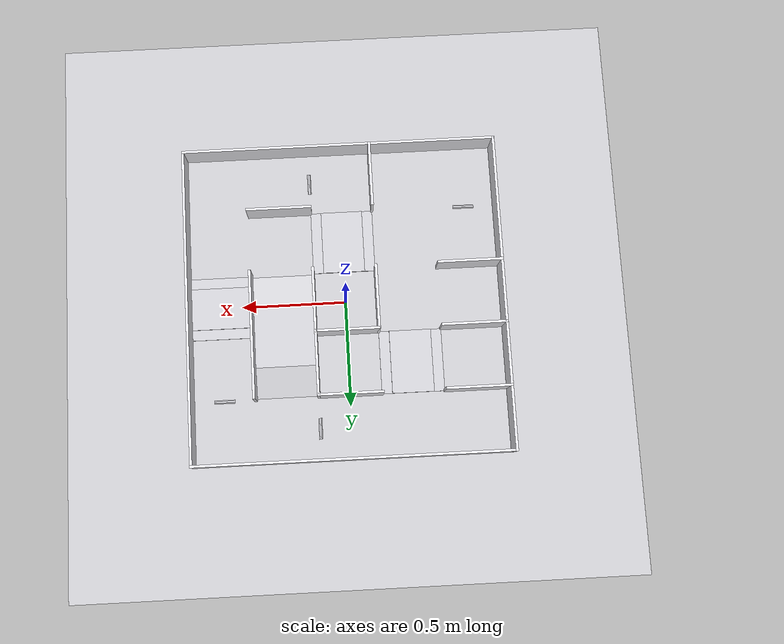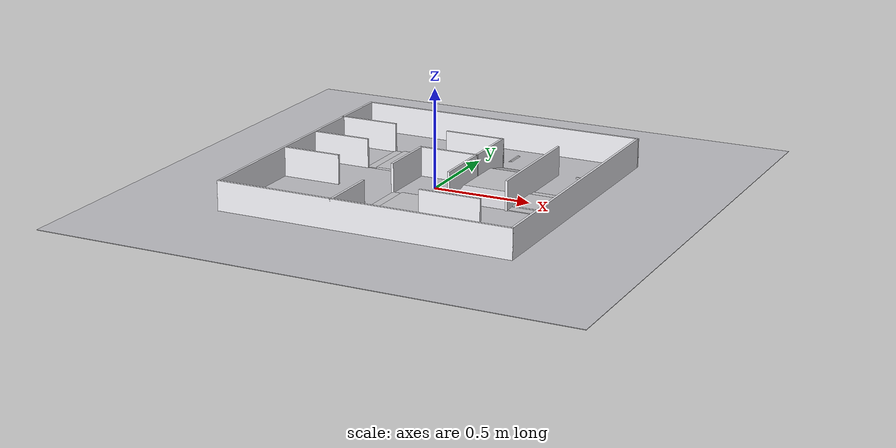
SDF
<sdf version="1.10">
 <world name="pista_a">
  <model name="floor">
   <static>true</static>
   <link name="link">
    <collision name="collision">
     <geometry><plane><normal>0 0 1</normal><size>2.700 2.700</size></plane></geometry>
     <surface><friction><ode><mu>1.0</mu><mu2>1.0</mu2></ode></friction></surface>
    </collision>
    <visual name="visual">
     <geometry><plane><normal>0 0 1</normal><size>2.700 2.700</size></plane></geometry>
     <material><ambient>0.55 0.55 0.57 1</ambient><diffuse>0.80 0.80 0.82 1</diffuse></material>
    </visual>
   </link>
  </model>
  <model name="pista_tiles">
   <static>true</static>
   <link name="tiles">
    <visual name="v_t00_magenta">
     <pose>-0.60000 0.60000 0.00060 0.00000 0 0</pose>
     <geometry><box><size>0.29600 0.29600 0.00100</size></box></geometry>
     <material><ambient>0.700 0.280 0.538 1</ambient><diffuse>1.000 0.400 0.769 1</diffuse></material>
    </visual>
    <visual name="v_t10_yellow">
     <pose>-0.60000 0.30000 0.00060 0.00000 0 0</pose>
     <geometry><box><size>0.29600 0.29600 0.00100</size></box></geometry>
     <material><ambient>0.700 0.609 0.244 1</ambient><diffuse>1.000 0.871 0.349 1</diffuse></material>
    </visual>
    <visual name="v_t40_orange">
     <pose>-0.60000 -0.60000 0.00060 0.00000 0 0</pose>
     <geometry><box><size>0.29600 0.29600 0.00100</size></box></geometry>
     <material><ambient>0.700 0.398 0.211 1</ambient><diffuse>1.000 0.569 0.302 1</diffuse></material>
    </visual>
    <visual name="v_t01_cyan">
     <pose>-0.30000 0.60000 0.00060 0.00000 0 0</pose>
     <geometry><box><size>0.29600 0.29600 0.00100</size></box></geometry>
     <material><ambient>0.253 0.618 0.631 1</ambient><diffuse>0.361 0.882 0.902 1</diffuse></material>
    </visual>
    <visual name="v_t02_inicial">
     <pose>0.00000 0.60000 0.00060 0.00000 0 0</pose>
     <geometry><box><size>0.29600 0.29600 0.00100</size></box></geometry>
     <material><ambient>0.346 0.596 0.239 1</ambient><diffuse>0.494 0.851 0.341 1</diffuse></material>
    </visual>
    <visual name="v_t22_final">
     <pose>0.00000 0.00000 0.00060 0.00000 0 0</pose>
     <geometry><box><size>0.29600 0.29600 0.00100</size></box></geometry>
     <material><ambient>0.700 0.239 0.239 1</ambient><diffuse>1.000 0.341 0.341 1</diffuse></material>
    </visual>
   </link>
  </model>
  <model name="pista_a">
   <static>true</static>
   <link name="structure">
    <collision name="c_w0">
     <pose>-0.75000 0.00000 0.07500 0.00000 0 0</pose>
     <geometry><box><size>0.01200 1.51200 0.15000</size></box></geometry>
    </collision>
    <visual name="v_w0">
     <pose>-0.75000 0.00000 0.07500 0.00000 0 0</pose>
     <geometry><box><size>0.01200 1.51200 0.15000</size></box></geometry>
     <material><ambient>0.651 0.651 0.665 1</ambient><diffuse>0.930 0.930 0.950 1</diffuse></material>
    </visual>
    <collision name="c_w1">
     <pose>-0.15000 0.00000 0.07500 0.00000 0 0</pose>
     <geometry><box><size>0.01200 0.31200 0.15000</size></box></geometry>
    </collision>
    <visual name="v_w1">
     <pose>-0.15000 0.00000 0.07500 0.00000 0 0</pose>
     <geometry><box><size>0.01200 0.31200 0.15000</size></box></geometry>
     <material><ambient>0.651 0.651 0.665 1</ambient><diffuse>0.930 0.930 0.950 1</diffuse></material>
    </visual>
    <collision name="c_w2">
     <pose>-0.15000 -0.60000 0.07500 0.00000 0 0</pose>
     <geometry><box><size>0.01200 0.31200 0.15000</size></box></geometry>
    </collision>
    <visual name="v_w2">
     <pose>-0.15000 -0.60000 0.07500 0.00000 0 0</pose>
     <geometry><box><size>0.01200 0.31200 0.15000</size></box></geometry>
     <material><ambient>0.651 0.651 0.665 1</ambient><diffuse>0.930 0.930 0.950 1</diffuse></material>
    </visual>
    <collision name="c_w3">
     <pose>0.15000 0.15000 0.07500 0.00000 0 0</pose>
     <geometry><box><size>0.01200 0.61200 0.15000</size></box></geometry>
    </collision>
    <visual name="v_w3">
     <pose>0.15000 0.15000 0.07500 0.00000 0 0</pose>
     <geometry><box><size>0.01200 0.61200 0.15000</size></box></geometry>
     <material><ambient>0.651 0.651 0.665 1</ambient><diffuse>0.930 0.930 0.950 1</diffuse></material>
    </visual>
    <collision name="c_w4">
     <pose>0.45000 0.15000 0.07500 0.00000 0 0</pose>
     <geometry><box><size>0.01200 0.61200 0.15000</size></box></geometry>
    </collision>
    <visual name="v_w4">
     <pose>0.45000 0.15000 0.07500 0.00000 0 0</pose>
     <geometry><box><size>0.01200 0.61200 0.15000</size></box></geometry>
     <material><ambient>0.651 0.651 0.665 1</ambient><diffuse>0.930 0.930 0.950 1</diffuse></material>
    </visual>
    <collision name="c_w5">
     <pose>0.75000 0.00000 0.07500 0.00000 0 0</pose>
     <geometry><box><size>0.01200 1.51200 0.15000</size></box></geometry>
    </collision>
    <visual name="v_w5">
     <pose>0.75000 0.00000 0.07500 0.00000 0 0</pose>
     <geometry><box><size>0.01200 1.51200 0.15000</size></box></geometry>
     <material><ambient>0.651 0.651 0.665 1</ambient><diffuse>0.930 0.930 0.950 1</diffuse></material>
    </visual>
    <collision name="c_w6">
     <pose>0.00000 0.75000 0.07500 0.00000 0 0</pose>
     <geometry><box><size>1.51200 0.01200 0.15000</size></box></geometry>
    </collision>
    <visual name="v_w6">
     <pose>0.00000 0.75000 0.07500 0.00000 0 0</pose>
     <geometry><box><size>1.51200 0.01200 0.15000</size></box></geometry>
     <material><ambient>0.651 0.651 0.665 1</ambient><diffuse>0.930 0.930 0.950 1</diffuse></material>
    </visual>
    <collision name="c_w7">
     <pose>-0.60000 0.45000 0.07500 0.00000 0 0</pose>
     <geometry><box><size>0.31200 0.01200 0.15000</size></box></geometry>
    </collision>
    <visual name="v_w7">
     <pose>-0.60000 0.45000 0.07500 0.00000 0 0</pose>
     <geometry><box><size>0.31200 0.01200 0.15000</size></box></geometry>
     <material><ambient>0.651 0.651 0.665 1</ambient><diffuse>0.930 0.930 0.950 1</diffuse></material>
    </visual>
    <collision name="c_w8">
     <pose>0.00000 0.45000 0.07500 0.00000 0 0</pose>
     <geometry><box><size>0.31200 0.01200 0.15000</size></box></geometry>
    </collision>
    <visual name="v_w8">
     <pose>0.00000 0.45000 0.07500 0.00000 0 0</pose>
     <geometry><box><size>0.31200 0.01200 0.15000</size></box></geometry>
     <material><ambient>0.651 0.651 0.665 1</ambient><diffuse>0.930 0.930 0.950 1</diffuse></material>
    </visual>
    <collision name="c_w9">
     <pose>-0.60000 0.15000 0.07500 0.00000 0 0</pose>
     <geometry><box><size>0.31200 0.01200 0.15000</size></box></geometry>
    </collision>
    <visual name="v_w9">
     <pose>-0.60000 0.15000 0.07500 0.00000 0 0</pose>
     <geometry><box><size>0.31200 0.01200 0.15000</size></box></geometry>
     <material><ambient>0.651 0.651 0.665 1</ambient><diffuse>0.930 0.930 0.950 1</diffuse></material>
    </visual>
    <collision name="c_w10">
     <pose>0.00000 0.15000 0.07500 0.00000 0 0</pose>
     <geometry><box><size>0.31200 0.01200 0.15000</size></box></geometry>
    </collision>
    <visual name="v_w10">
     <pose>0.00000 0.15000 0.07500 0.00000 0 0</pose>
     <geometry><box><size>0.31200 0.01200 0.15000</size></box></geometry>
     <material><ambient>0.651 0.651 0.665 1</ambient><diffuse>0.930 0.930 0.950 1</diffuse></material>
    </visual>
    <collision name="c_w11">
     <pose>-0.60000 -0.15000 0.07500 0.00000 0 0</pose>
     <geometry><box><size>0.31200 0.01200 0.15000</size></box></geometry>
    </collision>
    <visual name="v_w11">
     <pose>-0.60000 -0.15000 0.07500 0.00000 0 0</pose>
     <geometry><box><size>0.31200 0.01200 0.15000</size></box></geometry>
     <material><ambient>0.651 0.651 0.665 1</ambient><diffuse>0.930 0.930 0.950 1</diffuse></material>
    </visual>
    <collision name="c_w12">
     <pose>0.30000 -0.45000 0.07500 0.00000 0 0</pose>
     <geometry><box><size>0.31200 0.01200 0.15000</size></box></geometry>
    </collision>
    <visual name="v_w12">
     <pose>0.30000 -0.45000 0.07500 0.00000 0 0</pose>
     <geometry><box><size>0.31200 0.01200 0.15000</size></box></geometry>
     <material><ambient>0.651 0.651 0.665 1</ambient><diffuse>0.930 0.930 0.950 1</diffuse></material>
    </visual>
    <collision name="c_w13">
     <pose>0.00000 -0.75000 0.07500 0.00000 0 0</pose>
     <geometry><box><size>1.51200 0.01200 0.15000</size></box></geometry>
    </collision>
    <visual name="v_w13">
     <pose>0.00000 -0.75000 0.07500 0.00000 0 0</pose>
     <geometry><box><size>1.51200 0.01200 0.15000</size></box></geometry>
     <material><ambient>0.651 0.651 0.665 1</ambient><diffuse>0.930 0.930 0.950 1</diffuse></material>
    </visual>
    <collision name="c_stair0_0">
     <pose>-0.42500 0.30000 0.00250 0.00000 0 0</pose>
     <geometry><box><size>0.05000 0.30000 0.00500</size></box></geometry>
    </collision>
    <visual name="v_stair0_0">
     <pose>-0.42500 0.30000 0.00250 0.00000 0 0</pose>
     <geometry><box><size>0.05000 0.30000 0.00500</size></box></geometry>
     <material><ambient>0.574 0.574 0.588 1</ambient><diffuse>0.820 0.820 0.840 1</diffuse></material>
    </visual>
    <collision name="c_stair0_1">
     <pose>-0.30000 0.30000 0.00500 0.00000 0 0</pose>
     <geometry><box><size>0.20000 0.30000 0.01000</size></box></geometry>
    </collision>
    <visual name="v_stair0_1">
     <pose>-0.30000 0.30000 0.00500 0.00000 0 0</pose>
     <geometry><box><size>0.20000 0.30000 0.01000</size></box></geometry>
     <material><ambient>0.574 0.574 0.588 1</ambient><diffuse>0.820 0.820 0.840 1</diffuse></material>
    </visual>
    <collision name="c_stair0_2">
     <pose>-0.17500 0.30000 0.00250 0.00000 0 0</pose>
     <geometry><box><size>0.05000 0.30000 0.00500</size></box></geometry>
    </collision>
    <visual name="v_stair0_2">
     <pose>-0.17500 0.30000 0.00250 0.00000 0 0</pose>
     <geometry><box><size>0.05000 0.30000 0.00500</size></box></geometry>
     <material><ambient>0.574 0.574 0.588 1</ambient><diffuse>0.820 0.820 0.840 1</diffuse></material>
    </visual>
    <collision name="c_stair1_0">
     <pose>-0.12500 -0.30000 0.00250 0.00000 0 0</pose>
     <geometry><box><size>0.05000 0.30000 0.00500</size></box></geometry>
    </collision>
    <visual name="v_stair1_0">
     <pose>-0.12500 -0.30000 0.00250 0.00000 0 0</pose>
     <geometry><box><size>0.05000 0.30000 0.00500</size></box></geometry>
     <material><ambient>0.574 0.574 0.588 1</ambient><diffuse>0.820 0.820 0.840 1</diffuse></material>
    </visual>
    <collision name="c_stair1_1">
     <pose>0.00000 -0.30000 0.00500 0.00000 0 0</pose>
     <geometry><box><size>0.20000 0.30000 0.01000</size></box></geometry>
    </collision>
    <visual name="v_stair1_1">
     <pose>0.00000 -0.30000 0.00500 0.00000 0 0</pose>
     <geometry><box><size>0.20000 0.30000 0.01000</size></box></geometry>
     <material><ambient>0.574 0.574 0.588 1</ambient><diffuse>0.820 0.820 0.840 1</diffuse></material>
    </visual>
    <collision name="c_stair1_2">
     <pose>0.12500 -0.30000 0.00250 0.00000 0 0</pose>
     <geometry><box><size>0.05000 0.30000 0.00500</size></box></geometry>
    </collision>
    <visual name="v_stair1_2">
     <pose>0.12500 -0.30000 0.00250 0.00000 0 0</pose>
     <geometry><box><size>0.05000 0.30000 0.00500</size></box></geometry>
     <material><ambient>0.574 0.574 0.588 1</ambient><diffuse>0.820 0.820 0.840 1</diffuse></material>
    </visual>
    <collision name="c_stair2_0">
     <pose>0.60000 -0.12500 0.00250 0.00000 0 0</pose>
     <geometry><box><size>0.30000 0.05000 0.00500</size></box></geometry>
    </collision>
    <visual name="v_stair2_0">
     <pose>0.60000 -0.12500 0.00250 0.00000 0 0</pose>
     <geometry><box><size>0.30000 0.05000 0.00500</size></box></geometry>
     <material><ambient>0.574 0.574 0.588 1</ambient><diffuse>0.820 0.820 0.840 1</diffuse></material>
    </visual>
    <collision name="c_stair2_1">
     <pose>0.60000 0.00000 0.00500 0.00000 0 0</pose>
     <geometry><box><size>0.30000 0.20000 0.01000</size></box></geometry>
    </collision>
    <visual name="v_stair2_1">
     <pose>0.60000 0.00000 0.00500 0.00000 0 0</pose>
     <geometry><box><size>0.30000 0.20000 0.01000</size></box></geometry>
     <material><ambient>0.574 0.574 0.588 1</ambient><diffuse>0.820 0.820 0.840 1</diffuse></material>
    </visual>
    <collision name="c_stair2_2">
     <pose>0.60000 0.12500 0.00250 0.00000 0 0</pose>
     <geometry><box><size>0.30000 0.05000 0.00500</size></box></geometry>
    </collision>
    <visual name="v_stair2_2">
     <pose>0.60000 0.12500 0.00250 0.00000 0 0</pose>
     <geometry><box><size>0.30000 0.05000 0.00500</size></box></geometry>
     <material><ambient>0.574 0.574 0.588 1</ambient><diffuse>0.820 0.820 0.840 1</diffuse></material>
    </visual>
    <collision name="c_ramp0_flat">
     <pose>0.30000 0.15000 0.02010 0.00000 0 0</pose>
     <geometry><box><size>0.30000 0.30000 0.04019</size></box></geometry>
    </collision>
    <visual name="v_ramp0_flat">
     <pose>0.30000 0.15000 0.02010 0.00000 0 0</pose>
     <geometry><box><size>0.30000 0.30000 0.04019</size></box></geometry>
     <material><ambient>0.574 0.574 0.588 1</ambient><diffuse>0.820 0.820 0.840 1</diffuse></material>
    </visual>
    <collision name="c_ramp0_s0">
     <pose>0.30000 0.37241 0.01044 -0.26180 0 0</pose>
     <geometry><box><size>0.30000 0.15529 0.02000</size></box></geometry>
    </collision>
    <visual name="v_ramp0_s0">
     <pose>0.30000 0.37241 0.01044 -0.26180 0 0</pose>
     <geometry><box><size>0.30000 0.15529 0.02000</size></box></geometry>
     <material><ambient>0.574 0.574 0.588 1</ambient><diffuse>0.820 0.820 0.840 1</diffuse></material>
    </visual>
    <collision name="c_ramp0_s1">
     <pose>0.30000 -0.07241 0.01044 0.26180 0 0</pose>
     <geometry><box><size>0.30000 0.15529 0.02000</size></box></geometry>
    </collision>
    <visual name="v_ramp0_s1">
     <pose>0.30000 -0.07241 0.01044 0.26180 0 0</pose>
     <geometry><box><size>0.30000 0.15529 0.02000</size></box></geometry>
     <material><ambient>0.574 0.574 0.588 1</ambient><diffuse>0.820 0.820 0.840 1</diffuse></material>
    </visual>
    <collision name="c_bump0_top">
     <pose>0.60000 0.45000 0.00300 0.00000 0 0</pose>
     <geometry><box><size>0.10000 0.00800 0.00600</size></box></geometry>
    </collision>
    <visual name="v_bump0_top">
     <pose>0.60000 0.45000 0.00300 0.00000 0 0</pose>
     <geometry><box><size>0.10000 0.00800 0.00600</size></box></geometry>
     <material><ambient>0.574 0.574 0.588 1</ambient><diffuse>0.820 0.820 0.840 1</diffuse></material>
    </visual>
    <collision name="c_bump0_c0">
     <pose>0.60000 0.45488 0.00088 -0.78540 0 0</pose>
     <geometry><box><size>0.10000 0.00849 0.00600</size></box></geometry>
    </collision>
    <visual name="v_bump0_c0">
     <pose>0.60000 0.45488 0.00088 -0.78540 0 0</pose>
     <geometry><box><size>0.10000 0.00849 0.00600</size></box></geometry>
     <material><ambient>0.574 0.574 0.588 1</ambient><diffuse>0.820 0.820 0.840 1</diffuse></material>
    </visual>
    <collision name="c_bump0_c1">
     <pose>0.60000 0.44512 0.00088 0.78540 0 0</pose>
     <geometry><box><size>0.10000 0.00849 0.00600</size></box></geometry>
    </collision>
    <visual name="v_bump0_c1">
     <pose>0.60000 0.44512 0.00088 0.78540 0 0</pose>
     <geometry><box><size>0.10000 0.00849 0.00600</size></box></geometry>
     <material><ambient>0.574 0.574 0.588 1</ambient><diffuse>0.820 0.820 0.840 1</diffuse></material>
    </visual>
    <collision name="c_bump1_top">
     <pose>-0.60000 -0.45000 0.00300 0.00000 0 0</pose>
     <geometry><box><size>0.10000 0.00800 0.00600</size></box></geometry>
    </collision>
    <visual name="v_bump1_top">
     <pose>-0.60000 -0.45000 0.00300 0.00000 0 0</pose>
     <geometry><box><size>0.10000 0.00800 0.00600</size></box></geometry>
     <material><ambient>0.574 0.574 0.588 1</ambient><diffuse>0.820 0.820 0.840 1</diffuse></material>
    </visual>
    <collision name="c_bump1_c0">
     <pose>-0.60000 -0.44512 0.00088 -0.78540 0 0</pose>
     <geometry><box><size>0.10000 0.00849 0.00600</size></box></geometry>
    </collision>
    <visual name="v_bump1_c0">
     <pose>-0.60000 -0.44512 0.00088 -0.78540 0 0</pose>
     <geometry><box><size>0.10000 0.00849 0.00600</size></box></geometry>
     <material><ambient>0.574 0.574 0.588 1</ambient><diffuse>0.820 0.820 0.840 1</diffuse></material>
    </visual>
    <collision name="c_bump1_c1">
     <pose>-0.60000 -0.45488 0.00088 0.78540 0 0</pose>
     <geometry><box><size>0.10000 0.00849 0.00600</size></box></geometry>
    </collision>
    <visual name="v_bump1_c1">
     <pose>-0.60000 -0.45488 0.00088 0.78540 0 0</pose>
     <geometry><box><size>0.10000 0.00849 0.00600</size></box></geometry>
     <material><ambient>0.574 0.574 0.588 1</ambient><diffuse>0.820 0.820 0.840 1</diffuse></material>
    </visual>
    <collision name="c_bump2_top">
     <pose>0.15000 0.60000 0.00300 0.00000 0 0</pose>
     <geometry><box><size>0.00800 0.10000 0.00600</size></box></geometry>
    </collision>
    <visual name="v_bump2_top">
     <pose>0.15000 0.60000 0.00300 0.00000 0 0</pose>
     <geometry><box><size>0.00800 0.10000 0.00600</size></box></geometry>
     <material><ambient>0.574 0.574 0.588 1</ambient><diffuse>0.820 0.820 0.840 1</diffuse></material>
    </visual>
    <collision name="c_bump2_c0">
     <pose>0.15488 0.60000 0.00088 0.00000 0.78540 0</pose>
     <geometry><box><size>0.00849 0.10000 0.00600</size></box></geometry>
    </collision>
    <visual name="v_bump2_c0">
     <pose>0.15488 0.60000 0.00088 0.00000 0.78540 0</pose>
     <geometry><box><size>0.00849 0.10000 0.00600</size></box></geometry>
     <material><ambient>0.574 0.574 0.588 1</ambient><diffuse>0.820 0.820 0.840 1</diffuse></material>
    </visual>
    <collision name="c_bump2_c1">
     <pose>0.14512 0.60000 0.00088 0.00000 -0.78540 0</pose>
     <geometry><box><size>0.00849 0.10000 0.00600</size></box></geometry>
    </collision>
    <visual name="v_bump2_c1">
     <pose>0.14512 0.60000 0.00088 0.00000 -0.78540 0</pose>
     <geometry><box><size>0.00849 0.10000 0.00600</size></box></geometry>
     <material><ambient>0.574 0.574 0.588 1</ambient><diffuse>0.820 0.820 0.840 1</diffuse></material>
    </visual>
    <collision name="c_bump3_top">
     <pose>0.15000 -0.60000 0.00300 0.00000 0 0</pose>
     <geometry><box><size>0.00800 0.10000 0.00600</size></box></geometry>
    </collision>
    <visual name="v_bump3_top">
     <pose>0.15000 -0.60000 0.00300 0.00000 0 0</pose>
     <geometry><box><size>0.00800 0.10000 0.00600</size></box></geometry>
     <material><ambient>0.574 0.574 0.588 1</ambient><diffuse>0.820 0.820 0.840 1</diffuse></material>
    </visual>
    <collision name="c_bump3_c0">
     <pose>0.15488 -0.60000 0.00088 0.00000 0.78540 0</pose>
     <geometry><box><size>0.00849 0.10000 0.00600</size></box></geometry>
    </collision>
    <visual name="v_bump3_c0">
     <pose>0.15488 -0.60000 0.00088 0.00000 0.78540 0</pose>
     <geometry><box><size>0.00849 0.10000 0.00600</size></box></geometry>
     <material><ambient>0.574 0.574 0.588 1</ambient><diffuse>0.820 0.820 0.840 1</diffuse></material>
    </visual>
    <collision name="c_bump3_c1">
     <pose>0.14512 -0.60000 0.00088 0.00000 -0.78540 0</pose>
     <geometry><box><size>0.00849 0.10000 0.00600</size></box></geometry>
    </collision>
    <visual name="v_bump3_c1">
     <pose>0.14512 -0.60000 0.00088 0.00000 -0.78540 0</pose>
     <geometry><box><size>0.00849 0.10000 0.00600</size></box></geometry>
     <material><ambient>0.574 0.574 0.588 1</ambient><diffuse>0.820 0.820 0.840 1</diffuse></material>
    </visual>
   </link>
  </model>
 </world>
</sdf>
